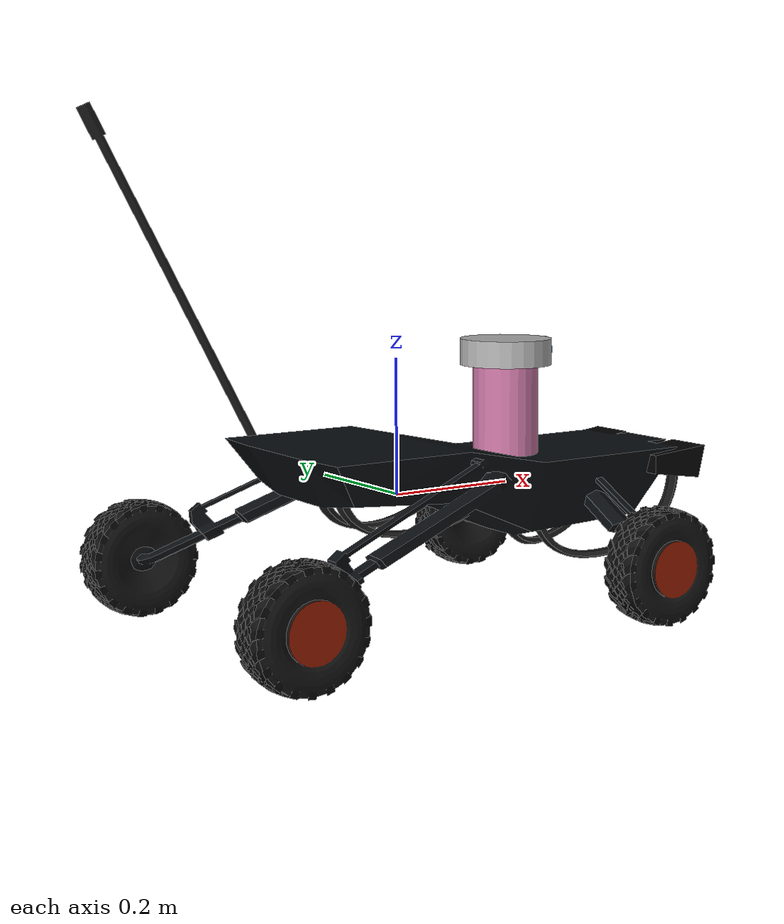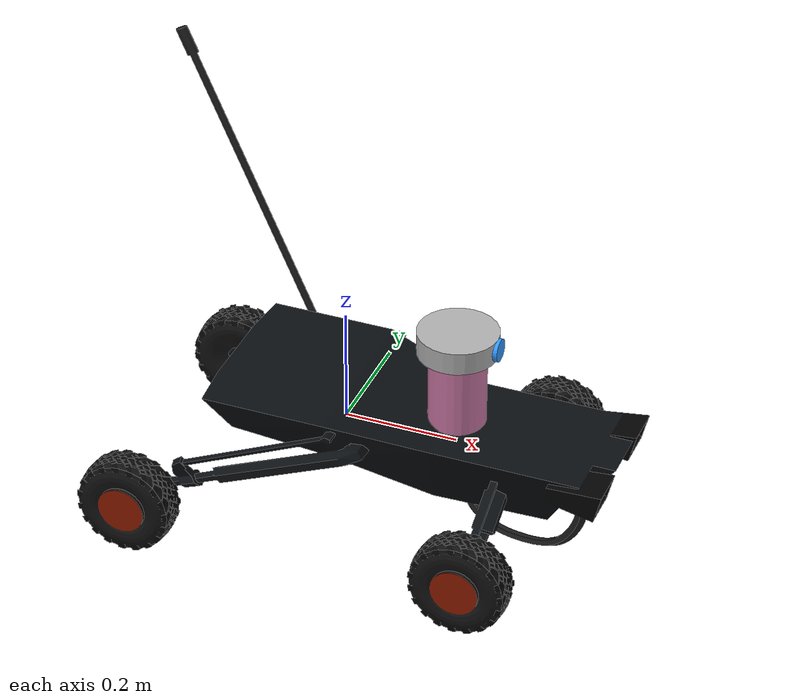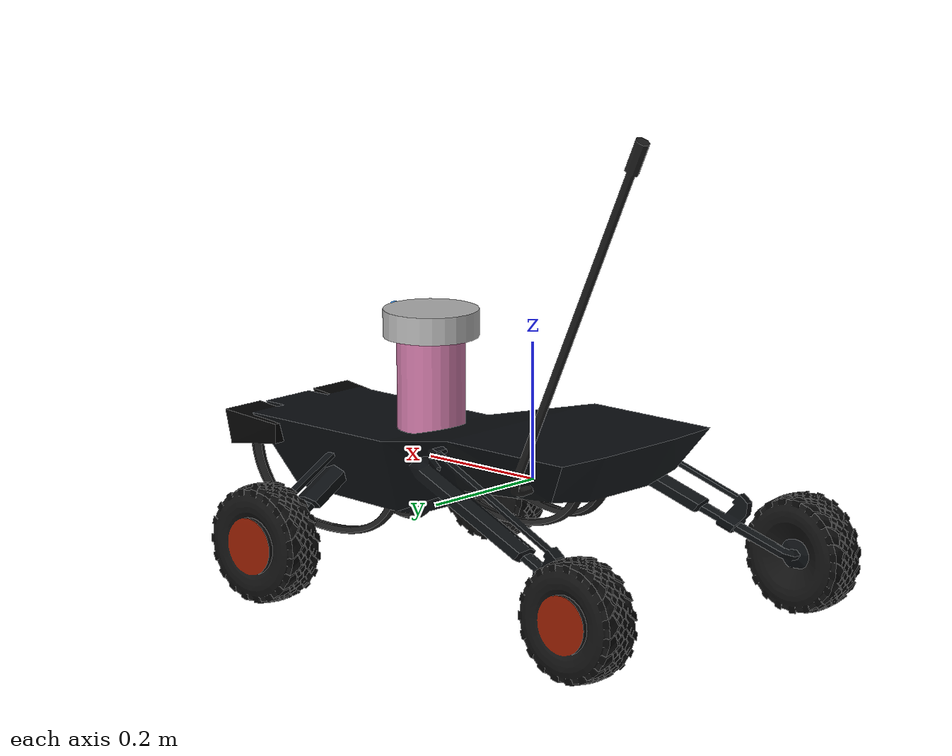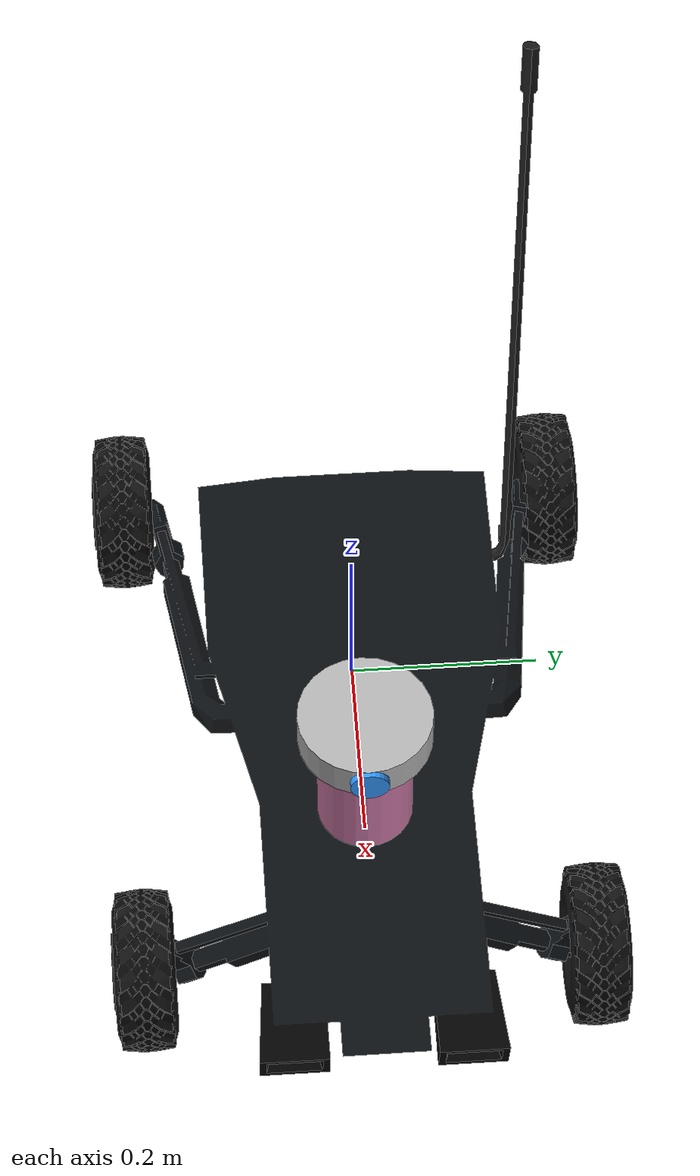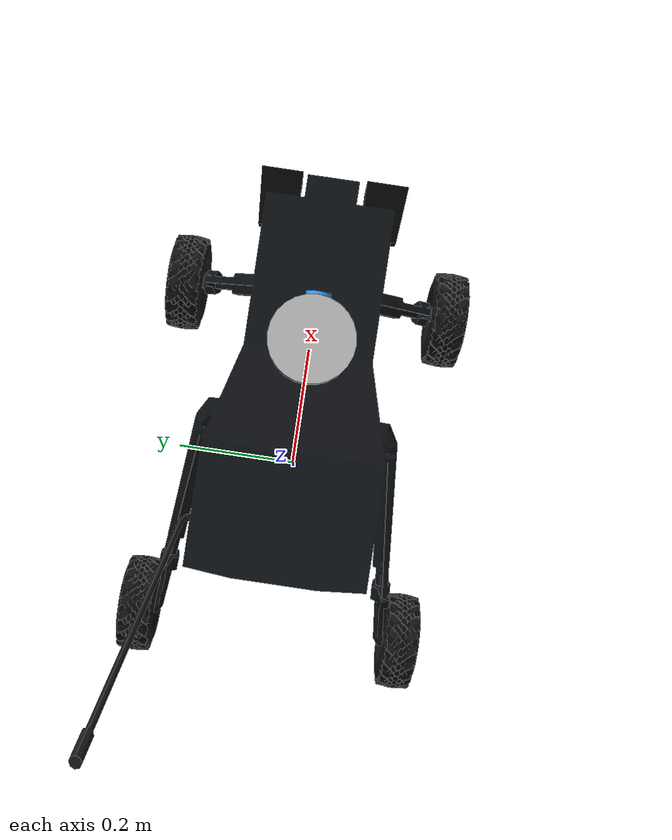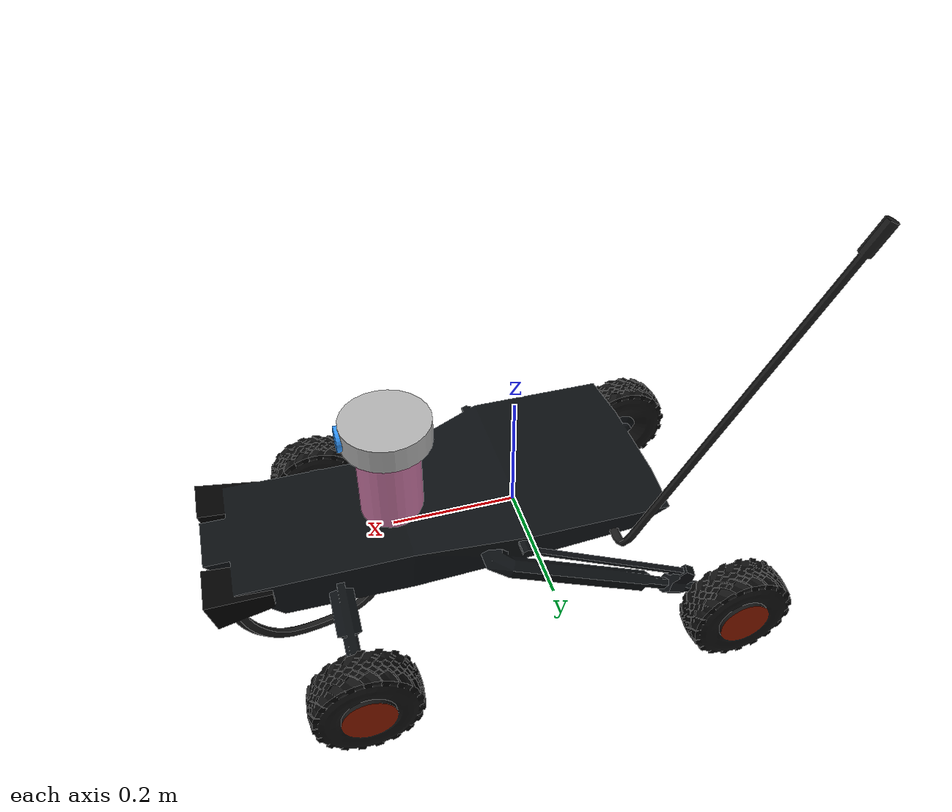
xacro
<?xml version="1.0" encoding="utf-8"?>
<!-- rover.urdf.xacro — rover with camera mounted -->
<robot xmlns:xacro="http://www.ros.org/wiki/xacro" name="$(arg prefix)">

  <!-- ───── launch-time arguments (must stay at the top) ───── -->
  <xacro:arg name="prefix" default="rover"/>
  <xacro:arg name="description_pkg" default="rover_description"/>

  <!-- bridge prefix and description_pkg args into properties -->
  <xacro:property name="prefix" value="$(arg prefix)"/>
  <xacro:property name="description_pkg" value="$(arg description_pkg)"/>

  <!-- arguments required for ros2_control macro -->
  <xacro:arg name="world_name" default="world"/>
  <xacro:arg name="agent_ns" default=""/>
  <xacro:arg name="use_sim_time" default="false"/>
  <xacro:arg name="simulation_controllers_config_file" default="$(find rover_gazebo)/config/gazebo_rover_controllers.yaml"/>
  <xacro:arg name="ff_vel" default="3.0"/>
  <xacro:arg name="ff_accel" default="1.2"/>
  <xacro:arg name="add_sensors_plugin" default="false"/>

  <!-- now sim_ctrl_file can stay as-is -->
  <xacro:property name="sim_ctrl_file" value="$(arg simulation_controllers_config_file)"/>

  <!-- include ros2_control definition -->
  <xacro:include filename="$(find rover_description)/urdf/ros2_control/rover.ros2_control.xacro"/>
  <xacro:include filename="$(find rover_description)/urdf/rover.gazebo.xacro"/>

  <!-- ─────────────── Body ─────────────── -->
  <link name="${prefix}_base"/>
  <joint name="${prefix}_base_fixed" type="fixed">
    <parent link="${prefix}_base"/>
    <child link="${prefix}_body"/>
    <origin xyz="0 0 0" rpy="0 0 0"/>
  </joint>

  <link name="${prefix}_body">
    <inertial>
      <origin xyz="0 0 0" rpy="0 0 0"/>
      <mass value="1.0"/>
      <inertia ixx="0.1" ixy="0" ixz="0" iyy="0.1" iyz="0" izz="0.1"/>
    </inertial>
    <visual>
      <origin xyz="0.1 0 -0.04" rpy="0 0 0"/>
      <geometry>
        <mesh filename="file://$(find ${description_pkg})/meshes/visual/rover.dae" scale="0.0105 0.00825 0.01"/>
      </geometry>
    </visual>
    <collision>
      <origin xyz="0 0 0" rpy="0 0 0"/>
      <geometry>
        <box size="0.65 0.22 0.08"/>
      </geometry>
    </collision>
  </link>

  <link name="${prefix}_wheel_RR">
    <inertial>
      <origin xyz="0 0 0" rpy="0 0 0"/>
      <mass value="0.05"/>
      <inertia ixx="0.005" ixy="0.0" ixz="0.0" iyy="0.005" iyz="0.0" izz="0.005"/>
    </inertial>
    <visual>
      <origin xyz="0 0 0" rpy="0 0 0"/>
      <geometry>
        <mesh filename="file://$(find ${description_pkg})/meshes/visual/rover_wheel.dae" scale="1 1 1"/>
      </geometry>
    </visual>
    <collision>
      <origin xyz="0 0 0" rpy="0 0 0"/>
      <geometry>
        <cylinder length="0.05" radius="0.1"/>
      </geometry>
    </collision>
  <gazebo reference="${prefix}_wheel_RR">
    <mu1>2.8</mu1>
    <mu2>3.8</mu2>
    <friction_model>cone</friction_model>
  </gazebo>
  </link>

  <link name="${prefix}_wheel_FR">
    <inertial>
      <origin xyz="0 0 0" rpy="0 0 0"/>
      <mass value="0.05"/>
      <inertia ixx="0.005" ixy="0.0" ixz="0.0" iyy="0.005" iyz="0.0" izz="0.005"/>
    </inertial>
    <visual>
      <origin xyz="0 0 0" rpy="0 0 0"/>
      <geometry>
        <mesh filename="file://$(find ${description_pkg})/meshes/visual/rover_wheel.dae" scale="1 1 1"/>
      </geometry>
    </visual>
    <collision>
      <origin xyz="0 0 0" rpy="0 0 0"/>
      <geometry>
        <cylinder length="0.05" radius="0.1"/>
      </geometry>
    </collision>
  <gazebo reference="${prefix}_wheel_FR">
    <mu1>2.8</mu1>
    <mu2>3.8</mu2>
    <friction_model>cone</friction_model>
  </gazebo>
  </link>

  <link name="${prefix}_wheel_RL">
    <inertial>
      <origin xyz="0 0 0" rpy="0 0 0"/>
      <mass value="0.05"/>
      <inertia ixx="0.005" ixy="0.0" ixz="0.0" iyy="0.005" iyz="0.0" izz="0.005"/>
    </inertial>
    <visual>
      <origin xyz="0 0 0" rpy="3.1416 0 0"/>
      <geometry>
        <mesh filename="file://$(find ${description_pkg})/meshes/visual/rover_wheel.dae" scale="1 1 1"/>
      </geometry>
    </visual>
    <collision>
      <origin xyz="0 0 0" rpy="0 0 0"/>
      <geometry>
        <cylinder length="0.05" radius="0.1"/>
      </geometry>
    </collision>
  <gazebo reference="${prefix}_wheel_RL">
    <mu1>2.8</mu1>
    <mu2>3.8</mu2>
    <friction_model>cone</friction_model>
  </gazebo>
  </link>

  <link name="${prefix}_wheel_FL">
    <inertial>
      <origin xyz="0 0 0" rpy="0 0 0"/>
      <mass value="0.05"/>
      <inertia ixx="0.005" ixy="0.0" ixz="0.0" iyy="0.005" iyz="0.0" izz="0.005"/>
    </inertial>
    <visual>
      <origin xyz="0 0 0" rpy="3.1416 0 0"/>
      <geometry>
        <mesh filename="file://$(find ${description_pkg})/meshes/visual/rover_wheel.dae" scale="1 1 1"/>
      </geometry>
    </visual>
    <collision>
      <origin xyz="0 0 0" rpy="0 0 0"/>
      <geometry>
        <cylinder length="0.05" radius="0.1"/>
      </geometry>
    </collision>

  <gazebo reference="${prefix}_wheel_FL">
    <mu1>2.8</mu1>
    <mu2>3.8</mu2>
    <friction_model>cone</friction_model>
  </gazebo>

  </link>

  <!-- wheel joints -->
  <joint name="${prefix}_base_to_RR" type="continuous">
    <parent link="${prefix}_body"/>
    <child link="${prefix}_wheel_RR"/>
    <origin xyz="-0.3   0.24 -0.1" rpy="-1.57079632679 0 0"/>
    <axis xyz="0 0 1"/>
    <limit effort="50.0" velocity="50.0"/>
    <dynamics damping="0.2" friction="9.0"/>
  </joint>

  <joint name="${prefix}_base_to_RL" type="continuous">
    <parent link="${prefix}_body"/>
    <child link="${prefix}_wheel_RL"/>
    <origin xyz="-0.3   -0.24 -0.1" rpy="-1.57079632679 0 0"/>
    <axis xyz="0 0 1"/>
    <limit effort="50.0" velocity="50.0"/>
    <dynamics damping="0.2" friction="9.0"/>
  </joint>

  <joint name="${prefix}_base_to_FL" type="continuous">
    <parent link="${prefix}_body"/>
    <child link="${prefix}_wheel_FL"/>
    <origin xyz="0.3   -0.24 -0.1" rpy="-1.57079632679 0 0"/>
    <axis xyz="0 0 1"/>
    <limit effort="50.0" velocity="50.0"/>
    <dynamics damping="0.2" friction="9.0"/>
  </joint>

  <joint name="${prefix}_base_to_FR" type="continuous">
    <parent link="${prefix}_body"/>
    <child link="${prefix}_wheel_FR"/>
    <origin xyz="0.3   0.24 -0.1" rpy="-1.57079632679 0 0"/>
    <axis xyz="0 0 1"/>
    <limit effort="50.0" velocity="50.0"/>
    <dynamics damping="0.2" friction="9.0"/>
  </joint>

  <!-- ───────── instantiate ros2_control plugin and controllers ───────── -->
  <xacro:rover_ros2_control
      prefix="${prefix}"
      world_name="$(arg world_name)"
      agent_ns="$(arg agent_ns)"
      use_sim_time="$(arg use_sim_time)"
      simulation_controllers_config_file="${sim_ctrl_file}"
      ff_vel="$(arg ff_vel)"
      ff_accel="$(arg ff_accel)"/>

  <!-- Gazebo systems (PosePublisher etc.) -->
<xacro:rover_gazebo
    prefix="${prefix}"
    world_name="$(arg world_name)"
    agent_ns="$(arg agent_ns)"
    use_sim_time="$(arg use_sim_time)"
    add_sensors_plugin="$(arg add_sensors_plugin)"/>

  <!-- Camera Setup -->

  <link name="${prefix}_camera_pole">
    <visual>
      <geometry>
        <cylinder length="0.18" radius="0.05"/>
      </geometry>
                <origin xyz="0 -0.1 0" rpy="1.57079632679 0 0"/>
    </visual>
    <inertial>
      <mass value="1.0"/>
      <inertia ixx="0.01" ixy="0.0" ixz="0.0"
               iyy="0.01" iyz="0.0"
               izz="0.01"/>
    </inertial>
  </link>

  <joint name="${prefix}_base_to_camera_pole" type="fixed">
    <parent link="${prefix}_body"/>
    <child link="${prefix}_camera_pole"/>
    <origin xyz="0.2 0 0.2" rpy="1.57079632679 0 0"/>
  </joint>

  <link name="${prefix}_camera_link">
     <visual>
      <geometry>
        <cylinder length="0.04" radius="0.07"/>
      </geometry>
                <origin xyz="0 0 0" rpy="1.57079632679 0 0"/>
    </visual>

  <visual name="cam_tip">
    <geometry>
      <cylinder length="0.02" radius="0.02"/>
    </geometry>
    <origin xyz="0.065 0 0" rpy="0 1.57079632679 0"/>
    <material name="cam_tip_blue">
      <color rgba="0.2 0.6 1.0 1.0"/>
    </material>
  </visual>

      <inertial>
      <mass value="0.01"/>
      <inertia ixx="0.01" ixy="0.0" ixz="0.0"
               iyy="0.01" iyz="0.0"
               izz="0.01"/>
    </inertial>
  </link>

  <joint name="${prefix}_camera_joint" type="fixed">
    <parent link="${prefix}_camera_pole"/>
    <child link="${prefix}_camera_link"/>
    <origin xyz="0 0 0" rpy="0 0 0"/>
  </joint>

</robot>
<!-- end of file -->
